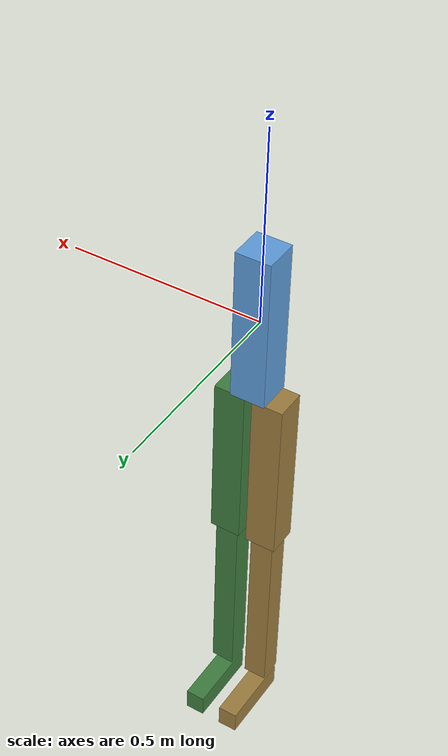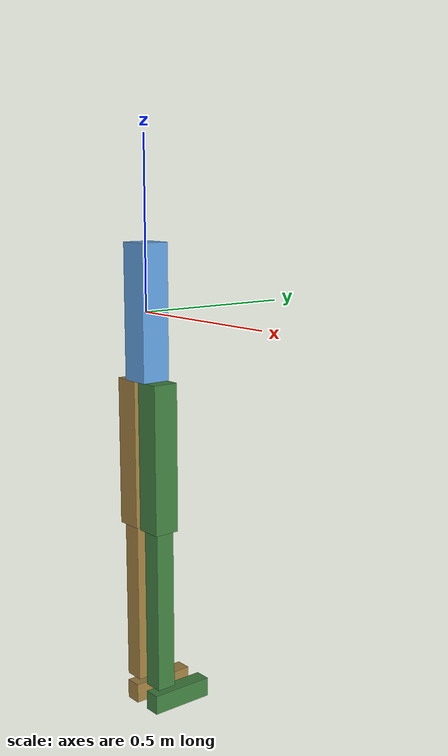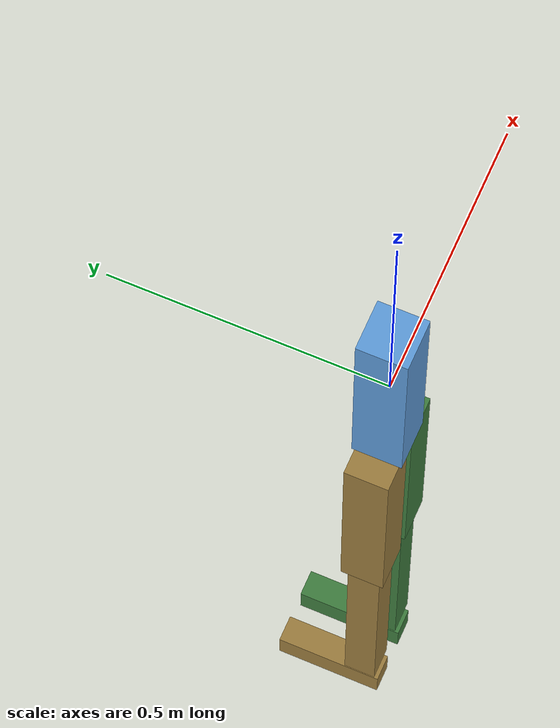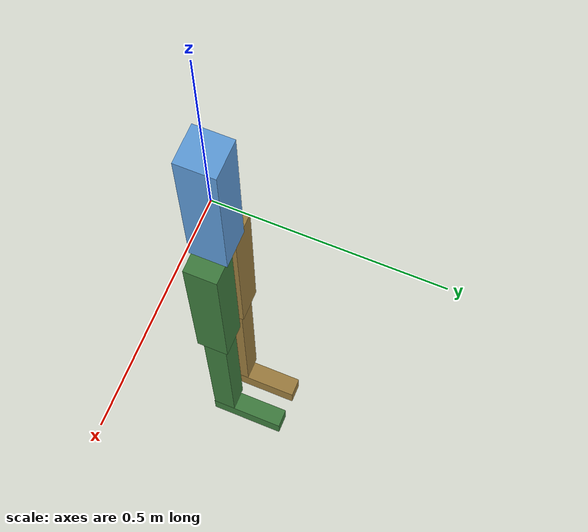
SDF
<?xml version="1.0"?>
<sdf version="1.8">
  <model name="walker2d_bare">
    <link name="anchor">
      <inertial><mass>0.5</mass>
        <inertia><ixx>0.001</ixx><iyy>0.001</iyy><izz>0.001</izz></inertia></inertial>
    </link>
    <joint name="root_fwd" type="prismatic">
      <pose relative_to="anchor">0 0 0 0 0 0</pose>
      <parent>anchor</parent><child>d1</child>
      <axis><xyz>0 1 0</xyz><dynamics><damping>0.9</damping></dynamics></axis>
    </joint>
    <link name="d1"><pose relative_to="root_fwd">0 0 0 0 0 0</pose>
      <inertial><mass>1.0</mass>
        <inertia><ixx>1e-4</ixx><iyy>1e-4</iyy><izz>1e-4</izz></inertia></inertial>
    </link>
    <joint name="root_up" type="prismatic">
      <pose relative_to="d1">0 0 0 0 0 0</pose>
      <parent>d1</parent><child>d2</child>
      <axis><xyz>0 0 1</xyz><dynamics><damping>0.9</damping></dynamics></axis>
    </joint>
    <link name="d2"><pose relative_to="root_up">0 0 0 0 0 0</pose>
      <inertial><mass>1.0</mass>
        <inertia><ixx>1e-4</ixx><iyy>1e-4</iyy><izz>1e-4</izz></inertia></inertial>
    </link>
    <joint name="root_pitch" type="revolute">
      <pose relative_to="d2">0 0 0 0 0 0</pose>
      <parent>d2</parent><child>torso</child>
      <axis><xyz>1 0 0</xyz><dynamics><damping>1.5</damping></dynamics></axis>
    </joint>
    <link name="torso">
      <pose relative_to="root_pitch">0 0 0 0 0 0</pose>
      <inertial><mass>3.53</mass>
        <inertia><ixx>1.05</ixx><iyy>1.05</iyy><izz>0.0045</izz></inertia></inertial>
      <collision name="torso_collision">
        <geometry><box><size>0.09 0.09 0.4</size></box></geometry></collision>
      <visual name="torso_visual">
        <geometry><box><size>0.09 0.09 0.4</size></box></geometry>
        <material><ambient>0.375 0.625 0.875 1</ambient><diffuse>0.375 0.625 0.875 1</diffuse></material></visual>
    </link>
    <joint name="thigh_joint" type="revolute">
      <pose relative_to="torso">-0.05 0 -0.2 0 0 0</pose>
      <parent>torso</parent><child>thigh</child>
      <axis><xyz>1 0 0</xyz><limit><lower>-2.618</lower><upper>0.0</upper></limit><dynamics><damping>1.5</damping></dynamics></axis>
    </joint>
    <link name="thigh">
      <pose relative_to="thigh_joint">0 0 0 0 0 0</pose>
      <inertial><pose>0 0 -0.225 0 0 0</pose><mass>3.93</mass>
        <inertia><ixx>1.07</ixx><iyy>1.07</iyy><izz>0.005</izz></inertia></inertial>
      <collision name="thigh_collision"><pose>0 0 -0.225 0 0 0</pose>
        <geometry><box><size>0.08 0.08 0.45</size></box></geometry></collision>
      <visual name="thigh_visual"><pose>0 0 -0.225 0 0 0</pose>
        <geometry><box><size>0.08 0.08 0.45</size></box></geometry>
        <material><ambient>0.625 0.5 0.25 1</ambient><diffuse>0.625 0.5 0.25 1</diffuse></material></visual>
    </link>
    <joint name="leg_joint" type="revolute">
      <pose relative_to="thigh">0 0 -0.45 0 0 0</pose>
      <parent>thigh</parent><child>leg</child>
      <axis><xyz>1 0 0</xyz><limit><lower>-2.618</lower><upper>0.0</upper></limit><dynamics><damping>1.5</damping></dynamics></axis>
    </joint>
    <link name="leg">
      <pose relative_to="leg_joint">0 0 0 0 0 0</pose>
      <inertial><pose>0 0 -0.25 0 0 0</pose><mass>2.71</mass>
        <inertia><ixx>1.06</ixx><iyy>1.06</iyy><izz>0.0022</izz></inertia></inertial>
      <collision name="leg_collision"><pose>0 0 -0.25 0 0 0</pose>
        <geometry><box><size>0.06 0.06 0.5</size></box></geometry></collision>
      <visual name="leg_visual"><pose>0 0 -0.25 0 0 0</pose>
        <geometry><box><size>0.06 0.06 0.5</size></box></geometry>
        <material><ambient>0.625 0.5 0.25 1</ambient><diffuse>0.625 0.5 0.25 1</diffuse></material></visual>
    </link>
    <joint name="foot_joint" type="revolute">
      <pose relative_to="leg">0 0 -0.5 0 0 0</pose>
      <parent>leg</parent><child>foot</child>
      <axis><xyz>1 0 0</xyz><limit><lower>-0.785</lower><upper>0.785</upper></limit><dynamics><damping>1.5</damping></dynamics></axis>
    </joint>
    <link name="foot">
      <pose relative_to="foot_joint">0 0 0 0 0 0</pose>
      <inertial><pose>0 0.065 -0.05 0 0 0</pose><mass>2.5</mass>
        <inertia><ixx>1.03</ixx><iyy>1.0</iyy><izz>1.03</izz></inertia></inertial>
      <collision name="foot_collision"><pose>0 0.065 -0.05 0 0 0</pose>
        <geometry><box><size>0.05 0.2 0.06</size></box></geometry></collision>
      <visual name="foot_visual"><pose>0 0.065 -0.05 0 0 0</pose>
        <geometry><box><size>0.05 0.2 0.06</size></box></geometry>
        <material><ambient>0.625 0.5 0.25 1</ambient><diffuse>0.625 0.5 0.25 1</diffuse></material></visual>
    </link>
    <joint name="thigh_left_joint" type="revolute">
      <pose relative_to="torso">0.05 0 -0.2 0 0 0</pose>
      <parent>torso</parent><child>thigh_left</child>
      <axis><xyz>1 0 0</xyz><limit><lower>-2.618</lower><upper>0.0</upper></limit><dynamics><damping>1.5</damping></dynamics></axis>
    </joint>
    <link name="thigh_left">
      <pose relative_to="thigh_left_joint">0 0 0 0 0 0</pose>
      <inertial><pose>0 0 -0.225 0 0 0</pose><mass>3.93</mass>
        <inertia><ixx>1.07</ixx><iyy>1.07</iyy><izz>0.005</izz></inertia></inertial>
      <collision name="thigh_left_collision"><pose>0 0 -0.225 0 0 0</pose>
        <geometry><box><size>0.08 0.08 0.45</size></box></geometry></collision>
      <visual name="thigh_left_visual"><pose>0 0 -0.225 0 0 0</pose>
        <geometry><box><size>0.08 0.08 0.45</size></box></geometry>
        <material><ambient>0.25 0.5 0.25 1</ambient><diffuse>0.25 0.5 0.25 1</diffuse></material></visual>
    </link>
    <joint name="leg_left_joint" type="revolute">
      <pose relative_to="thigh_left">0 0 -0.45 0 0 0</pose>
      <parent>thigh_left</parent><child>leg_left</child>
      <axis><xyz>1 0 0</xyz><limit><lower>-2.618</lower><upper>0.0</upper></limit><dynamics><damping>1.5</damping></dynamics></axis>
    </joint>
    <link name="leg_left">
      <pose relative_to="leg_left_joint">0 0 0 0 0 0</pose>
      <inertial><pose>0 0 -0.25 0 0 0</pose><mass>2.71</mass>
        <inertia><ixx>1.06</ixx><iyy>1.06</iyy><izz>0.0022</izz></inertia></inertial>
      <collision name="leg_left_collision"><pose>0 0 -0.25 0 0 0</pose>
        <geometry><box><size>0.06 0.06 0.5</size></box></geometry></collision>
      <visual name="leg_left_visual"><pose>0 0 -0.25 0 0 0</pose>
        <geometry><box><size>0.06 0.06 0.5</size></box></geometry>
        <material><ambient>0.25 0.5 0.25 1</ambient><diffuse>0.25 0.5 0.25 1</diffuse></material></visual>
    </link>
    <joint name="foot_left_joint" type="revolute">
      <pose relative_to="leg_left">0 0 -0.5 0 0 0</pose>
      <parent>leg_left</parent><child>foot_left</child>
      <axis><xyz>1 0 0</xyz><limit><lower>-0.785</lower><upper>0.785</upper></limit><dynamics><damping>1.5</damping></dynamics></axis>
    </joint>
    <link name="foot_left">
      <pose relative_to="foot_left_joint">0 0 0 0 0 0</pose>
      <inertial><pose>0 0.065 -0.05 0 0 0</pose><mass>2.5</mass>
        <inertia><ixx>1.03</ixx><iyy>1.0</iyy><izz>1.03</izz></inertia></inertial>
      <collision name="foot_left_collision"><pose>0 0.065 -0.05 0 0 0</pose>
        <geometry><box><size>0.05 0.2 0.06</size></box></geometry></collision>
      <visual name="foot_left_visual"><pose>0 0.065 -0.05 0 0 0</pose>
        <geometry><box><size>0.05 0.2 0.06</size></box></geometry>
        <material><ambient>0.25 0.5 0.25 1</ambient><diffuse>0.25 0.5 0.25 1</diffuse></material></visual>
    </link>
  </model>
</sdf>
